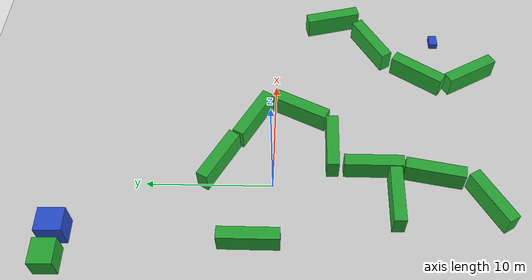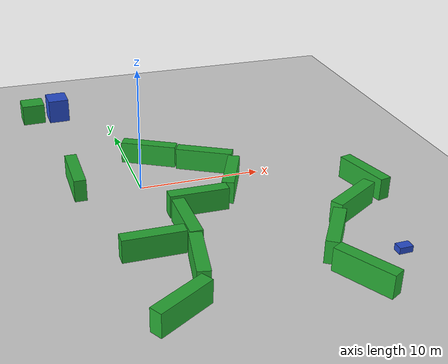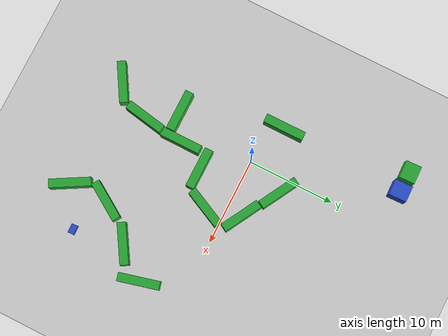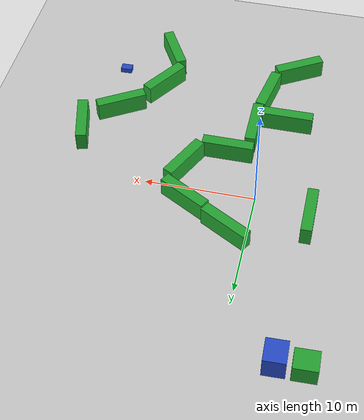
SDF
<sdf version="1.7">
 <world name="default">
  <light name="sun" type="directional">
   <pose>0 0 10 0 -0 0</pose>
   <diffuse>0.8 0.8 0.8 1</diffuse>
   <specular>0.2 0.2 0.2 1</specular>
   <attenuation>
    <range>1000</range>
    <constant>0.9</constant>
    <linear>0.01</linear>
    <quadratic>0.001</quadratic>
   </attenuation>
   <direction>-0.5 0.1 -0.9</direction>
   <spot><inner_angle>0</inner_angle><outer_angle>0</outer_angle><falloff>0</falloff></spot>
  </light>
  <model name="ground_plane">
   <static>1</static>
   <link name="link">
    <collision name="collision">
     <geometry><plane><normal>0 0 1</normal><size>100 100</size></plane></geometry>
     <surface><friction><ode><mu>100</mu><mu2>50</mu2></ode></friction></surface>
    </collision>
    <visual name="visual">
     <cast_shadows>0</cast_shadows>
     <geometry><plane><normal>0 0 1</normal><size>100 100</size></plane></geometry>
     <material>
      <script><uri>file://media/materials/scripts/gazebo.material</uri><name>Gazebo/Grey</name></script>
     </material>
    </visual>
   </link>
  </model>
  <gravity>0 0 -9.8</gravity>
  <magnetic_field>6e-06 2.3e-05 -4.2e-05</magnetic_field>
  <atmosphere type="adiabatic"/>
  <physics type="ode">
   <max_step_size>0.001</max_step_size>
   <real_time_factor>1</real_time_factor>
   <real_time_update_rate>1000</real_time_update_rate>
  </physics>
  <scene><ambient>0.4 0.4 0.4 1</ambient><background>0.7 0.7 0.7 1</background><shadows>1</shadows></scene>
  <audio><device>default</device></audio>
  <spherical_coordinates>
   <surface_model>EARTH_WGS84</surface_model>
   <latitude_deg>0</latitude_deg>
   <longitude_deg>0</longitude_deg>
   <elevation>0</elevation>
   <heading_deg>0</heading_deg>
  </spherical_coordinates>
  <model name="unit_box_clone_clone">
   <pose>-6.68354 16.181 0.914025 1.5708 -0 0.031251</pose>
   <link name="link">
    <inertial>
     <mass>1</mass>
     <inertia>
      <ixx>0.166667</ixx>
      <ixy>0</ixy>
      <ixz>0</ixz>
      <iyy>0.166667</iyy>
      <iyz>0</iyz>
      <izz>0.166667</izz>
     </inertia>
    </inertial>
    <collision name="collision"><geometry><box><size>2.03443 1.82805 1.82357</size></box></geometry></collision>
    <visual name="visual">
     <geometry><box><size>2.03443 1.82805 1.82357</size></box></geometry>
     <material>
      <script><name>Gazebo/Green</name><uri>file://media/materials/scripts/gazebo.material</uri></script>
     </material>
    </visual>
   </link>
  </model>
  <model name="unit_box_clone_0_clone">
   <pose>-4.32885 16.094 1.06964 0 -0 0.029481</pose>
   <link name="link">
    <inertial>
     <mass>1</mass>
     <inertia>
      <ixx>0.166667</ixx>
      <ixy>0</ixy>
      <ixz>0</ixz>
      <iyy>0.166667</iyy>
      <iyz>0</iyz>
      <izz>0.166667</izz>
     </inertia>
    </inertial>
    <collision name="collision"><geometry><box><size>1.86035 2.04617 2.13929</size></box></geometry></collision>
    <visual name="visual">
     <geometry><box><size>1.86035 2.04617 2.13929</size></box></geometry>
     <material>
      <script><name>Gazebo/Blue</name><uri>file://media/materials/scripts/gazebo.material</uri></script>
     </material>
    </visual>
   </link>
  </model>
  <model name="unit_box_clone_clone_clone">
   <pose>5.9696 1.78806 0.914026 1.5708 -2e-06 1.06419</pose>
   <link name="link">
    <inertial>
     <mass>1</mass>
     <inertia>
      <ixx>0.166667</ixx>
      <ixy>0</ixy>
      <ixz>0</ixz>
      <iyy>0.166667</iyy>
      <iyz>0</iyz>
      <izz>0.166667</izz>
     </inertia>
    </inertial>
    <collision name="collision"><geometry><box><size>0.975841 1.82805 4.68867</size></box></geometry></collision>
    <visual name="visual">
     <geometry><box><size>0.975841 1.82805 4.68867</size></box></geometry>
     <material>
      <script><name>Gazebo/Green</name><uri>file://media/materials/scripts/gazebo.material</uri></script>
     </material>
    </visual>
   </link>
  </model>
  <model name="unit_box_clone_clone_clone_clone">
   <pose>6.91469 -2.14769 0.914018 1.5708 2e-06 -0.445408</pose>
   <link name="link">
    <inertial>
     <mass>1</mass>
     <inertia>
      <ixx>0.166667</ixx>
      <ixy>0</ixy>
      <ixz>0</ixz>
      <iyy>0.166667</iyy>
      <iyz>0</iyz>
      <izz>0.166667</izz>
     </inertia>
    </inertial>
    <collision name="collision"><geometry><box><size>0.975842 1.82805 4.68867</size></box></geometry></collision>
    <visual name="visual">
     <geometry><box><size>0.975842 1.82805 4.68867</size></box></geometry>
     <material>
      <script><name>Gazebo/Green</name><uri>file://media/materials/scripts/gazebo.material</uri></script>
     </material>
    </visual>
   </link>
  </model>
  <model name="unit_box_clone_clone_clone_clone_0">
   <pose>1.51925 -7.87443 0.913087 1.5704 -0 -0.000398</pose>
   <link name="link">
    <inertial>
     <mass>1</mass>
     <inertia>
      <ixx>0.166667</ixx>
      <ixy>0</ixy>
      <ixz>0</ixz>
      <iyy>0.166667</iyy>
      <iyz>0</iyz>
      <izz>0.166667</izz>
     </inertia>
    </inertial>
    <collision name="collision"><geometry><box><size>0.975842 1.82805 4.68867</size></box></geometry></collision>
    <visual name="visual">
     <geometry><box><size>0.975842 1.82805 4.68867</size></box></geometry>
     <material>
      <script><name>Gazebo/Green</name><uri>file://media/materials/scripts/gazebo.material</uri></script>
     </material>
    </visual>
   </link>
  </model>
  <model name="unit_box_clone_clone_clone_clone_0_clone">
   <pose>3.37995 -4.66472 0.913087 1.5704 0 1.57047</pose>
   <link name="link">
    <inertial>
     <mass>1</mass>
     <inertia>
      <ixx>0.166667</ixx>
      <ixy>0</ixy>
      <ixz>0</ixz>
      <iyy>0.166667</iyy>
      <iyz>0</iyz>
      <izz>0.166667</izz>
     </inertia>
    </inertial>
    <collision name="collision"><geometry><box><size>0.975842 1.82805 4.68867</size></box></geometry></collision>
    <visual name="visual">
     <geometry><box><size>0.975842 1.82805 4.68867</size></box></geometry>
     <material>
      <script><name>Gazebo/Green</name><uri>file://media/materials/scripts/gazebo.material</uri></script>
     </material>
    </visual>
   </link>
  </model>
  <model name="unit_box_clone_clone_clone_clone_0_clone_clone">
   <pose>-1.39577 -9.50647 0.913087 1.5712 -0 1.57026</pose>
   <link name="link">
    <inertial>
     <mass>1</mass>
     <inertia>
      <ixx>0.166667</ixx>
      <ixy>0</ixy>
      <ixz>0</ixz>
      <iyy>0.166667</iyy>
      <iyz>0</iyz>
      <izz>0.166667</izz>
     </inertia>
    </inertial>
    <collision name="collision"><geometry><box><size>0.975842 1.82805 4.68867</size></box></geometry></collision>
    <visual name="visual">
     <geometry><box><size>0.975842 1.82805 4.68867</size></box></geometry>
     <material>
      <script><name>Gazebo/Green</name><uri>file://media/materials/scripts/gazebo.material</uri></script>
     </material>
    </visual>
   </link>
  </model>
  <model name="unit_box_clone_clone_clone_clone_0_clone_0">
   <pose>17.3155 -4.92122 0.913991 1.57078 -0 0.249861</pose>
   <link name="link">
    <inertial>
     <mass>1</mass>
     <inertia>
      <ixx>0.166667</ixx>
      <ixy>0</ixy>
      <ixz>0</ixz>
      <iyy>0.166667</iyy>
      <iyz>0</iyz>
      <izz>0.166667</izz>
     </inertia>
    </inertial>
    <collision name="collision"><geometry><box><size>0.975842 1.82805 4.68867</size></box></geometry></collision>
    <visual name="visual">
     <geometry><box><size>0.975842 1.82805 4.68867</size></box></geometry>
     <material>
      <script><name>Gazebo/Green</name><uri>file://media/materials/scripts/gazebo.material</uri></script>
     </material>
    </visual>
   </link>
  </model>
  <model name="unit_box_clone_clone_clone_clone_0_clone_1">
   <pose>0.957538 -12.6092 0.914022 1.5708 5e-06 -0.179194</pose>
   <link name="link">
    <inertial>
     <mass>1</mass>
     <inertia>
      <ixx>0.166667</ixx>
      <ixy>0</ixy>
      <ixz>0</ixz>
      <iyy>0.166667</iyy>
      <iyz>0</iyz>
      <izz>0.166667</izz>
     </inertia>
    </inertial>
    <collision name="collision"><geometry><box><size>0.975842 1.82805 4.68867</size></box></geometry></collision>
    <visual name="visual">
     <geometry><box><size>0.975842 1.82805 4.68867</size></box></geometry>
     <material>
      <script><name>Gazebo/Green</name><uri>file://media/materials/scripts/gazebo.material</uri></script>
     </material>
    </visual>
   </link>
  </model>
  <model name="unit_box_clone_clone_clone_clone_0_clone_clone_0">
   <pose>11.1633 -16.615 0.914026 1.57079 -3e-06 -2.62673</pose>
   <link name="link">
    <inertial>
     <mass>1</mass>
     <inertia>
      <ixx>0.166667</ixx>
      <ixy>0</ixy>
      <ixz>0</ixz>
      <iyy>0.166667</iyy>
      <iyz>0</iyz>
      <izz>0.166667</izz>
     </inertia>
    </inertial>
    <collision name="collision"><geometry><box><size>0.975842 1.82805 4.68867</size></box></geometry></collision>
    <visual name="visual">
     <geometry><box><size>0.975842 1.82805 4.68867</size></box></geometry>
     <material>
      <script><name>Gazebo/Green</name><uri>file://media/materials/scripts/gazebo.material</uri></script>
     </material>
    </visual>
   </link>
  </model>
  <model name="unit_box_clone_clone_clone_clone_0_clone_clone_1">
   <pose>-1.42787 -16.6844 0.914026 1.5708 3e-06 2.1092</pose>
   <link name="link">
    <inertial>
     <mass>1</mass>
     <inertia>
      <ixx>0.166667</ixx>
      <ixy>0</ixy>
      <ixz>0</ixz>
      <iyy>0.166667</iyy>
      <iyz>0</iyz>
      <izz>0.166667</izz>
     </inertia>
    </inertial>
    <collision name="collision"><geometry><box><size>0.975842 1.82805 4.68867</size></box></geometry></collision>
    <visual name="visual">
     <geometry><box><size>0.975842 1.82805 4.68867</size></box></geometry>
     <material>
      <script><name>Gazebo/Green</name><uri>file://media/materials/scripts/gazebo.material</uri></script>
     </material>
    </visual>
   </link>
  </model>
  <model name="unit_box_clone_clone_clone_clone_0_clone_1_clone">
   <pose>-4.95934 1.63581 0.913087 1.5704 -0 -0.000397</pose>
   <link name="link">
    <inertial>
     <mass>1</mass>
     <inertia>
      <ixx>0.166667</ixx>
      <ixy>0</ixy>
      <ixz>0</ixz>
      <iyy>0.166667</iyy>
      <iyz>0</iyz>
      <izz>0.166667</izz>
     </inertia>
    </inertial>
    <collision name="collision"><geometry><box><size>0.975842 1.82805 4.68867</size></box></geometry></collision>
    <visual name="visual">
     <geometry><box><size>0.975842 1.82805 4.68867</size></box></geometry>
     <material>
      <script><name>Gazebo/Green</name><uri>file://media/materials/scripts/gazebo.material</uri></script>
     </material>
    </visual>
   </link>
  </model>
  <model name="unit_box_clone_0_clone_clone">
   <pose>15.5333 -14.1066 0.2515 0 -0 0.029487</pose>
   <link name="link">
    <inertial>
     <mass>1</mass>
     <inertia>
      <ixx>0.166667</ixx>
      <ixy>0</ixy>
      <ixz>0</ixz>
      <iyy>0.166667</iyy>
      <iyz>0</iyz>
      <izz>0.166667</izz>
     </inertia>
    </inertial>
    <collision name="collision"><geometry><box><size>1.06552 0.717974 0.503001</size></box></geometry></collision>
    <visual name="visual">
     <geometry><box><size>1.06552 0.717974 0.503001</size></box></geometry>
     <material>
      <script><name>Gazebo/Blue</name><uri>file://media/materials/scripts/gazebo.material</uri></script>
     </material>
    </visual>
   </link>
  </model>
  <model name="unit_box_clone_clone_clone_clone_0_clone_1_clone_0">
   <pose>11.1456 -12.1771 0.914026 1.5708 -1e-05 -0.573524</pose>
   <link name="link">
    <inertial>
     <mass>1</mass>
     <inertia>
      <ixx>0.166667</ixx>
      <ixy>0</ixy>
      <ixz>0</ixz>
      <iyy>0.166667</iyy>
      <iyz>0</iyz>
      <izz>0.166667</izz>
     </inertia>
    </inertial>
    <collision name="collision"><geometry><box><size>0.975842 1.82805 4.68867</size></box></geometry></collision>
    <visual name="visual">
     <geometry><box><size>0.975842 1.82805 4.68867</size></box></geometry>
     <material>
      <script><name>Gazebo/Green</name><uri>file://media/materials/scripts/gazebo.material</uri></script>
     </material>
    </visual>
   </link>
  </model>
  <model name="unit_box_clone_clone_clone_clone_1">
   <pose>1.84793 4.3171 0.914026 1.5708 2e-06 1.06417</pose>
   <link name="link">
    <inertial>
     <mass>1</mass>
     <inertia>
      <ixx>0.166667</ixx>
      <ixy>0</ixy>
      <ixz>0</ixz>
      <iyy>0.166667</iyy>
      <iyz>0</iyz>
      <izz>0.166667</izz>
     </inertia>
    </inertial>
    <collision name="collision"><geometry><box><size>0.975841 1.82805 4.68867</size></box></geometry></collision>
    <visual name="visual">
     <geometry><box><size>0.975841 1.82805 4.68867</size></box></geometry>
     <material>
      <script><name>Gazebo/Green</name><uri>file://media/materials/scripts/gazebo.material</uri></script>
     </material>
    </visual>
   </link>
  </model>
  <model name="unit_box_clone_clone_clone_clone_0_clone_1_clone_0_clone">
   <pose>14.4851 -8.3211 0.914026 1.5708 3e-06 -1.02013</pose>
   <link name="link">
    <inertial>
     <mass>1</mass>
     <inertia>
      <ixx>0.166667</ixx>
      <ixy>0</ixy>
      <ixz>0</ixz>
      <iyy>0.166667</iyy>
      <iyz>0</iyz>
      <izz>0.166667</izz>
     </inertia>
    </inertial>
    <collision name="collision"><geometry><box><size>0.975842 1.82805 4.68867</size></box></geometry></collision>
    <visual name="visual">
     <geometry><box><size>0.975842 1.82805 4.68867</size></box></geometry>
     <material>
      <script><name>Gazebo/Green</name><uri>file://media/materials/scripts/gazebo.material</uri></script>
     </material>
    </visual>
   </link>
  </model>
 </world>
</sdf>
